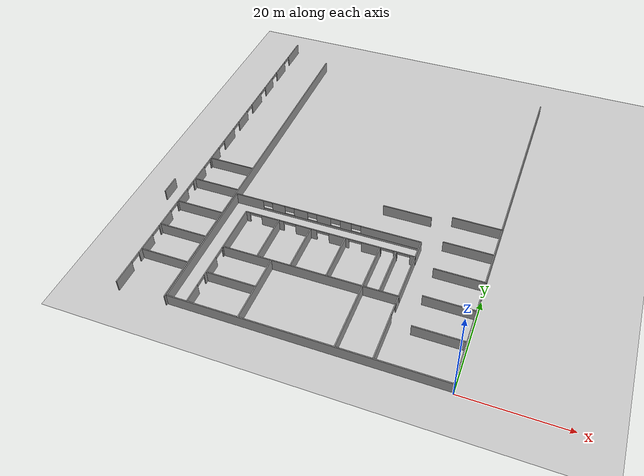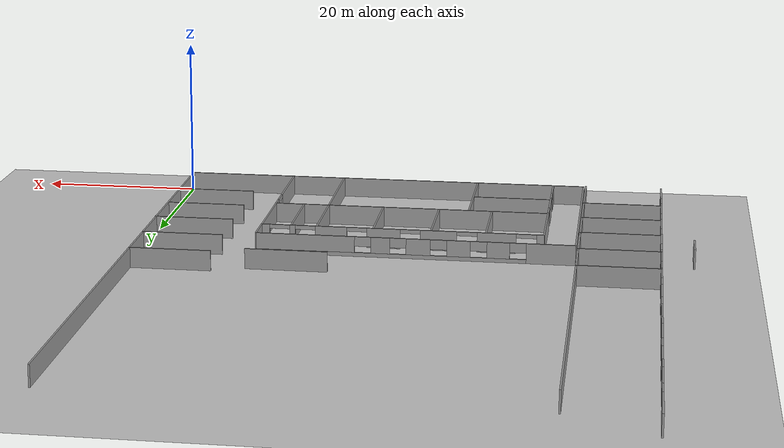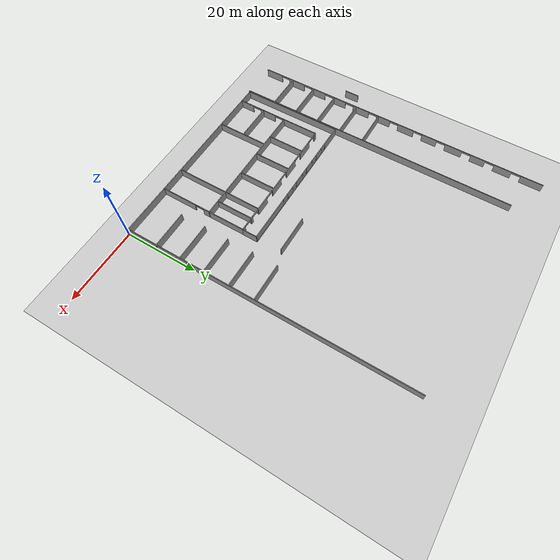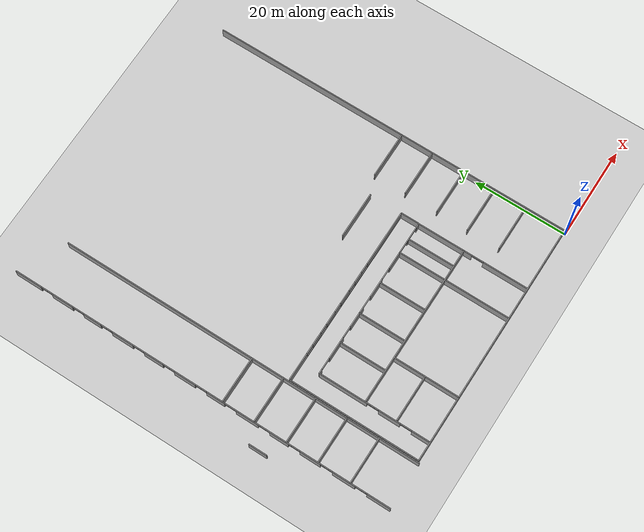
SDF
<sdf version="1.6">
 <world name="default">
  <model name="ground_plane">
   <static>1</static>
   <link name="link">
    <collision name="collision">
     <geometry><plane><normal>0 0 1</normal><size>100 100</size></plane></geometry>
     <surface><friction><ode><mu>100</mu><mu2>50</mu2></ode></friction></surface>
    </collision>
    <visual name="visual">
     <cast_shadows>0</cast_shadows>
     <geometry><plane><normal>0 0 1</normal><size>100 100</size></plane></geometry>
     <material>
      <script><uri>file://media/materials/scripts/gazebo.material</uri><name>Gazebo/Grey</name></script>
     </material>
    </visual>
   </link>
  </model>
  <model name="Jacaranda_v4">
   <link name="Wall_100">
    <collision name="Wall_100_Collision">
     <geometry><box><size>10 0.2 2.5</size></box></geometry>
     <pose>0 0 1.25 0 -0 0</pose>
    </collision>
    <visual name="Wall_100_Visual">
     <pose>0 0 1.25 0 -0 0</pose>
     <geometry><box><size>10 0.2 2.5</size></box></geometry>
     <material>
      <script><uri>file://media/materials/scripts/gazebo.material</uri><name>Gazebo/Grey</name></script>
     </material>
    </visual>
    <velocity_decay><linear>0</linear><angular>0</angular></velocity_decay>
    <pose>-6.16092 -32.9106 0 0 0 -1.5708</pose>
   </link>
   <link name="Wall_102">
    <collision name="Wall_102_Collision">
     <geometry><box><size>10 0.2 2.5</size></box></geometry>
     <pose>0 0 1.25 0 -0 0</pose>
    </collision>
    <visual name="Wall_102_Visual">
     <pose>0 0 1.25 0 -0 0</pose>
     <geometry><box><size>10 0.2 2.5</size></box></geometry>
     <material>
      <script><uri>file://media/materials/scripts/gazebo.material</uri><name>Gazebo/Grey</name></script>
     </material>
    </visual>
    <velocity_decay><linear>0</linear><angular>0</angular></velocity_decay>
    <pose>-16.4411 -32.898 0 0 0 -1.5708</pose>
   </link>
   <link name="Wall_104">
    <collision name="Wall_104_Collision">
     <geometry><box><size>10 0.2 2.5</size></box></geometry>
     <pose>0 0 1.25 0 -0 0</pose>
    </collision>
    <visual name="Wall_104_Visual">
     <pose>0 0 1.25 0 -0 0</pose>
     <geometry><box><size>10 0.2 2.5</size></box></geometry>
     <material>
      <script><uri>file://media/materials/scripts/gazebo.material</uri><name>Gazebo/Grey</name></script>
     </material>
    </visual>
    <velocity_decay><linear>0</linear><angular>0</angular></velocity_decay>
    <pose>-23.6073 -32.9162 0 0 0 -1.5708</pose>
   </link>
   <link name="Wall_106">
    <collision name="Wall_106_Collision">
     <geometry><box><size>10 0.2 2.5</size></box></geometry>
     <pose>0 0 1.25 0 -0 0</pose>
    </collision>
    <visual name="Wall_106_Visual">
     <pose>0 0 1.25 0 -0 0</pose>
     <geometry><box><size>10 0.2 2.5</size></box></geometry>
     <material>
      <script><uri>file://media/materials/scripts/gazebo.material</uri><name>Gazebo/Grey</name></script>
     </material>
    </visual>
    <velocity_decay><linear>0</linear><angular>0</angular></velocity_decay>
    <pose>-30.3649 -32.9482 0 0 0 -1.5708</pose>
   </link>
   <link name="Wall_108">
    <pose>-37.4695 -39.9617 0 0 0 -1.5708</pose>
    <visual name="Wall_108_Visual_0">
     <pose>-6.76156 0 1.25 0 -0 0</pose>
     <geometry><box><size>10.4769 0.2 2.5</size></box></geometry>
     <material>
      <script><uri>file://media/materials/scripts/gazebo.material</uri><name>Gazebo/Grey</name></script>
     </material>
    </visual>
    <collision name="Wall_108_Collision_0">
     <geometry><box><size>10.4769 0.2 2.5</size></box></geometry>
     <pose>-6.76156 0 1.25 0 -0 0</pose>
    </collision>
    <visual name="Wall_108_Visual_1">
     <pose>3.29825 0 1.25 0 -0 0</pose>
     <geometry><box><size>4.64276 0.2 2.5</size></box></geometry>
     <material>
      <script><uri>file://media/materials/scripts/gazebo.material</uri><name>Gazebo/Grey</name></script>
     </material>
    </visual>
    <collision name="Wall_108_Collision_1">
     <geometry><box><size>4.64276 0.2 2.5</size></box></geometry>
     <pose>3.29825 0 1.25 0 -0 0</pose>
    </collision>
    <visual name="Wall_108_Visual_2">
     <pose>10.0598 0 1.25 0 -0 0</pose>
     <geometry><box><size>3.88036 0.2 2.5</size></box></geometry>
     <material>
      <script><uri>file://media/materials/scripts/gazebo.material</uri><name>Gazebo/Grey</name></script>
     </material>
    </visual>
    <collision name="Wall_108_Collision_2">
     <geometry><box><size>3.88036 0.2 2.5</size></box></geometry>
     <pose>10.0598 0 1.25 0 -0 0</pose>
    </collision>
    <visual name="Wall_108_Visual_3">
     <pose>-0.273129 0 2.25 0 -0 0</pose>
     <geometry><box><size>2.5 0.2 0.5</size></box></geometry>
     <material>
      <script><uri>file://media/materials/scripts/gazebo.material</uri><name>Gazebo/Grey</name></script>
     </material>
    </visual>
    <collision name="Wall_108_Collision_3">
     <geometry><box><size>2.5 0.2 0.5</size></box></geometry>
     <pose>-0.273129 0 2.25 0 -0 0</pose>
    </collision>
    <visual name="Wall_108_Visual_4">
     <pose>6.86964 0 2.25 0 -0 0</pose>
     <geometry><box><size>2.5 0.2 0.5</size></box></geometry>
     <material>
      <script><uri>file://media/materials/scripts/gazebo.material</uri><name>Gazebo/Grey</name></script>
     </material>
    </visual>
    <collision name="Wall_108_Collision_4">
     <geometry><box><size>2.5 0.2 0.5</size></box></geometry>
     <pose>6.86964 0 2.25 0 -0 0</pose>
    </collision>
   </link>
   <link name="Wall_110">
    <collision name="Wall_110_Collision">
     <geometry><box><size>53 0.2 2.5</size></box></geometry>
     <pose>0 0 1.25 0 -0 0</pose>
    </collision>
    <visual name="Wall_110_Visual">
     <pose>0 0 1.25 0 -0 0</pose>
     <geometry><box><size>53 0.2 2.5</size></box></geometry>
     <material>
      <script><uri>file://media/materials/scripts/gazebo.material</uri><name>Gazebo/Grey</name></script>
     </material>
    </visual>
    <velocity_decay><linear>0</linear><angular>0</angular></velocity_decay>
    <pose>-15.0842 -52.0158 0 0 -0 0</pose>
   </link>
   <link name="Wall_112">
    <collision name="Wall_112_Collision">
     <geometry><box><size>14 0.2 2.5</size></box></geometry>
     <pose>0 0 1.25 0 -0 0</pose>
    </collision>
    <visual name="Wall_112_Visual">
     <pose>0 0 1.25 0 -0 0</pose>
     <geometry><box><size>14 0.2 2.5</size></box></geometry>
     <material>
      <script><uri>file://media/materials/scripts/gazebo.material</uri><name>Gazebo/Grey</name></script>
     </material>
    </visual>
    <velocity_decay><linear>0</linear><angular>0</angular></velocity_decay>
    <pose>-27.4151 -45.0631 0 0 0 -1.5708</pose>
   </link>
   <link name="Wall_114">
    <collision name="Wall_114_Collision">
     <geometry><box><size>28 0.2 2.5</size></box></geometry>
     <pose>0 0 1.25 0 -0 0</pose>
    </collision>
    <visual name="Wall_114_Visual">
     <pose>0 0 1.25 0 -0 0</pose>
     <geometry><box><size>28 0.2 2.5</size></box></geometry>
     <material>
      <script><uri>file://media/materials/scripts/gazebo.material</uri><name>Gazebo/Grey</name></script>
     </material>
    </visual>
    <velocity_decay><linear>0</linear><angular>0</angular></velocity_decay>
    <pose>-41.4842 -37.994 0 0 0 -1.5708</pose>
   </link>
   <link name="Wall_116">
    <collision name="Wall_116_Collision">
     <geometry><box><size>10 0.2 2.5</size></box></geometry>
     <pose>0 0 1.25 0 -0 0</pose>
    </collision>
    <visual name="Wall_116_Visual">
     <pose>0 0 1.25 0 -0 0</pose>
     <geometry><box><size>10 0.2 2.5</size></box></geometry>
     <material>
      <script><uri>file://media/materials/scripts/gazebo.material</uri><name>Gazebo/Grey</name></script>
     </material>
    </visual>
    <velocity_decay><linear>0</linear><angular>0</angular></velocity_decay>
    <pose>6.51408 -43.3984 0 0 -0 0</pose>
   </link>
   <link name="Wall_37">
    <pose>-2.48729 -39.9261 0 0 0 -1.5708</pose>
    <visual name="Wall_37_Visual_0">
     <pose>-6.07032 0 1.25 0 -0 0</pose>
     <geometry><box><size>11.8594 0.2 2.5</size></box></geometry>
     <material>
      <script><uri>file://media/materials/scripts/gazebo.material</uri><name>Gazebo/Grey</name></script>
     </material>
    </visual>
    <collision name="Wall_37_Collision_0">
     <geometry><box><size>11.8594 0.2 2.5</size></box></geometry>
     <pose>-6.07032 0 1.25 0 -0 0</pose>
    </collision>
    <visual name="Wall_37_Visual_1">
     <pose>7.17968 0 1.25 0 -0 0</pose>
     <geometry><box><size>9.64064 0.2 2.5</size></box></geometry>
     <material>
      <script><uri>file://media/materials/scripts/gazebo.material</uri><name>Gazebo/Grey</name></script>
     </material>
    </visual>
    <collision name="Wall_37_Collision_1">
     <geometry><box><size>9.64064 0.2 2.5</size></box></geometry>
     <pose>7.17968 0 1.25 0 -0 0</pose>
    </collision>
    <visual name="Wall_37_Visual_2">
     <pose>1.10936 0 2.25 0 -0 0</pose>
     <geometry><box><size>2.5 0.2 0.5</size></box></geometry>
     <material>
      <script><uri>file://media/materials/scripts/gazebo.material</uri><name>Gazebo/Grey</name></script>
     </material>
    </visual>
    <collision name="Wall_37_Collision_2">
     <geometry><box><size>2.5 0.2 0.5</size></box></geometry>
     <pose>1.10936 0 2.25 0 -0 0</pose>
    </collision>
   </link>
   <link name="Wall_52">
    <collision name="Wall_52_Collision">
     <geometry><box><size>24.1932 0.2 2.5</size></box></geometry>
     <pose>0 0 1.25 0 -0 0</pose>
    </collision>
    <visual name="Wall_52_Visual">
     <pose>0 0 1.25 0 -0 0</pose>
     <geometry><box><size>24.1932 0.2 2.5</size></box></geometry>
     <material>
      <script><uri>file://media/materials/scripts/gazebo.material</uri><name>Gazebo/Grey</name></script>
     </material>
    </visual>
    <velocity_decay><linear>0</linear><angular>0</angular></velocity_decay>
    <pose>-9.37734 -40.0171 0 0 0 -1.5708</pose>
   </link>
   <link name="Wall_63">
    <collision name="Wall_63_Collision">
     <geometry><box><size>10 0.2 2.5</size></box></geometry>
     <pose>0 0 1.25 0 -0 0</pose>
    </collision>
    <visual name="Wall_63_Visual">
     <pose>0 0 1.25 0 -0 0</pose>
     <geometry><box><size>10 0.2 2.5</size></box></geometry>
     <material>
      <script><uri>file://media/materials/scripts/gazebo.material</uri><name>Gazebo/Grey</name></script>
     </material>
    </visual>
    <velocity_decay><linear>0</linear><angular>0</angular></velocity_decay>
    <pose>-7.36232 -17.0326 0 0 -0 0</pose>
   </link>
   <link name="Wall_65">
    <pose>-21.9808 -24.0075 0 0 -0 0</pose>
    <visual name="Wall_65_Visual_0">
     <pose>-16.5353 0 1.25 0 -0 0</pose>
     <geometry><box><size>5.92942 0.2 2.5</size></box></geometry>
     <material>
      <script><uri>file://media/materials/scripts/gazebo.material</uri><name>Gazebo/Grey</name></script>
     </material>
    </visual>
    <collision name="Wall_65_Collision_0">
     <geometry><box><size>5.92942 0.2 2.5</size></box></geometry>
     <pose>-16.5353 0 1.25 0 -0 0</pose>
    </collision>
    <visual name="Wall_65_Visual_1">
     <pose>2.96471 0 0.25 0 -0 0</pose>
     <geometry><box><size>33.0706 0.2 0.5</size></box></geometry>
     <material>
      <script><uri>file://media/materials/scripts/gazebo.material</uri><name>Gazebo/Grey</name></script>
     </material>
    </visual>
    <collision name="Wall_65_Collision_1">
     <geometry><box><size>33.0706 0.2 0.5</size></box></geometry>
     <pose>2.96471 0 0.25 0 -0 0</pose>
    </collision>
    <visual name="Wall_65_Visual_2">
     <pose>-10.2002 0 1.5 0 -0 0</pose>
     <geometry><box><size>2.74072 0.2 2</size></box></geometry>
     <material>
      <script><uri>file://media/materials/scripts/gazebo.material</uri><name>Gazebo/Grey</name></script>
     </material>
    </visual>
    <collision name="Wall_65_Collision_2">
     <geometry><box><size>2.74072 0.2 2</size></box></geometry>
     <pose>-10.2002 0 1.5 0 -0 0</pose>
    </collision>
    <visual name="Wall_65_Visual_3">
     <pose>-5.38873 0 1.5 0 -0 0</pose>
     <geometry><box><size>2.88224 0.2 2</size></box></geometry>
     <material>
      <script><uri>file://media/materials/scripts/gazebo.material</uri><name>Gazebo/Grey</name></script>
     </material>
    </visual>
    <collision name="Wall_65_Collision_3">
     <geometry><box><size>2.88224 0.2 2</size></box></geometry>
     <pose>-5.38873 0 1.5 0 -0 0</pose>
    </collision>
    <visual name="Wall_65_Visual_4">
     <pose>-0.471118 0 1.5 0 -0 0</pose>
     <geometry><box><size>2.95299 0.2 2</size></box></geometry>
     <material>
      <script><uri>file://media/materials/scripts/gazebo.material</uri><name>Gazebo/Grey</name></script>
     </material>
    </visual>
    <collision name="Wall_65_Collision_4">
     <geometry><box><size>2.95299 0.2 2</size></box></geometry>
     <pose>-0.471118 0 1.5 0 -0 0</pose>
    </collision>
    <visual name="Wall_65_Visual_5">
     <pose>4.16347 0 1.5 0 -0 0</pose>
     <geometry><box><size>2.31618 0.2 2</size></box></geometry>
     <material>
      <script><uri>file://media/materials/scripts/gazebo.material</uri><name>Gazebo/Grey</name></script>
     </material>
    </visual>
    <collision name="Wall_65_Collision_5">
     <geometry><box><size>2.31618 0.2 2</size></box></geometry>
     <pose>4.16347 0 1.5 0 -0 0</pose>
    </collision>
    <visual name="Wall_65_Visual_6">
     <pose>13.4108 0 1.5 0 -0 0</pose>
     <geometry><box><size>12.1784 0.2 2</size></box></geometry>
     <material>
      <script><uri>file://media/materials/scripts/gazebo.material</uri><name>Gazebo/Grey</name></script>
     </material>
    </visual>
    <collision name="Wall_65_Collision_6">
     <geometry><box><size>12.1784 0.2 2</size></box></geometry>
     <pose>13.4108 0 1.5 0 -0 0</pose>
    </collision>
    <visual name="Wall_65_Visual_7">
     <pose>-12.5706 0 1.9 0 -0 0</pose>
     <geometry><box><size>2 0.2 1.2</size></box></geometry>
     <material>
      <script><uri>file://media/materials/scripts/gazebo.material</uri><name>Gazebo/Grey</name></script>
     </material>
    </visual>
    <collision name="Wall_65_Collision_7">
     <geometry><box><size>2 0.2 1.2</size></box></geometry>
     <pose>-12.5706 0 1.9 0 -0 0</pose>
    </collision>
    <visual name="Wall_65_Visual_8">
     <pose>-7.82985 0 1.9 0 -0 0</pose>
     <geometry><box><size>2 0.2 1.2</size></box></geometry>
     <material>
      <script><uri>file://media/materials/scripts/gazebo.material</uri><name>Gazebo/Grey</name></script>
     </material>
    </visual>
    <collision name="Wall_65_Collision_8">
     <geometry><box><size>2 0.2 1.2</size></box></geometry>
     <pose>-7.82985 0 1.9 0 -0 0</pose>
    </collision>
    <visual name="Wall_65_Visual_9">
     <pose>-2.94761 0 1.9 0 -0 0</pose>
     <geometry><box><size>2 0.2 1.2</size></box></geometry>
     <material>
      <script><uri>file://media/materials/scripts/gazebo.material</uri><name>Gazebo/Grey</name></script>
     </material>
    </visual>
    <collision name="Wall_65_Collision_9">
     <geometry><box><size>2 0.2 1.2</size></box></geometry>
     <pose>-2.94761 0 1.9 0 -0 0</pose>
    </collision>
    <visual name="Wall_65_Visual_10">
     <pose>2.00538 0 1.9 0 -0 0</pose>
     <geometry><box><size>2 0.2 1.2</size></box></geometry>
     <material>
      <script><uri>file://media/materials/scripts/gazebo.material</uri><name>Gazebo/Grey</name></script>
     </material>
    </visual>
    <collision name="Wall_65_Collision_10">
     <geometry><box><size>2 0.2 1.2</size></box></geometry>
     <pose>2.00538 0 1.9 0 -0 0</pose>
    </collision>
    <visual name="Wall_65_Visual_11">
     <pose>6.32156 0 1.9 0 -0 0</pose>
     <geometry><box><size>2 0.2 1.2</size></box></geometry>
     <material>
      <script><uri>file://media/materials/scripts/gazebo.material</uri><name>Gazebo/Grey</name></script>
     </material>
    </visual>
    <collision name="Wall_65_Collision_11">
     <geometry><box><size>2 0.2 1.2</size></box></geometry>
     <pose>6.32156 0 1.9 0 -0 0</pose>
    </collision>
   </link>
   <link name="Wall_69">
    <collision name="Wall_69_Collision">
     <geometry><box><size>78.4462 0.2 2.5</size></box></geometry>
     <pose>0 0 1.25 0 -0 0</pose>
    </collision>
    <visual name="Wall_69_Visual">
     <pose>0 0 1.25 0 -0 0</pose>
     <geometry><box><size>78.4462 0.2 2.5</size></box></geometry>
     <material>
      <script><uri>file://media/materials/scripts/gazebo.material</uri><name>Gazebo/Grey</name></script>
     </material>
    </visual>
    <velocity_decay><linear>0</linear><angular>0</angular></velocity_decay>
    <pose>11.3874 -12.8156 0 0 0 -1.5708</pose>
   </link>
   <link name="Wall_81">
    <collision name="Wall_81_Collision">
     <geometry><box><size>10 0.2 2.5</size></box></geometry>
     <pose>0 0 1.25 0 -0 0</pose>
    </collision>
    <visual name="Wall_81_Visual">
     <pose>0 0 1.25 0 -0 0</pose>
     <geometry><box><size>10 0.2 2.5</size></box></geometry>
     <material>
      <script><uri>file://media/materials/scripts/gazebo.material</uri><name>Gazebo/Grey</name></script>
     </material>
    </visual>
    <velocity_decay><linear>0</linear><angular>0</angular></velocity_decay>
    <pose>6.4754 -15.532 0 0 -0 0</pose>
   </link>
   <link name="Wall_83">
    <collision name="Wall_83_Collision">
     <geometry><box><size>10 0.2 2.5</size></box></geometry>
     <pose>0 0 1.25 0 -0 0</pose>
    </collision>
    <visual name="Wall_83_Visual">
     <pose>0 0 1.25 0 -0 0</pose>
     <geometry><box><size>10 0.2 2.5</size></box></geometry>
     <material>
      <script><uri>file://media/materials/scripts/gazebo.material</uri><name>Gazebo/Grey</name></script>
     </material>
    </visual>
    <velocity_decay><linear>0</linear><angular>0</angular></velocity_decay>
    <pose>6.44384 -22.4952 0 0 -0 0</pose>
   </link>
   <link name="Wall_85">
    <collision name="Wall_85_Collision">
     <geometry><box><size>10 0.2 2.5</size></box></geometry>
     <pose>0 0 1.25 0 -0 0</pose>
    </collision>
    <visual name="Wall_85_Visual">
     <pose>0 0 1.25 0 -0 0</pose>
     <geometry><box><size>10 0.2 2.5</size></box></geometry>
     <material>
      <script><uri>file://media/materials/scripts/gazebo.material</uri><name>Gazebo/Grey</name></script>
     </material>
    </visual>
    <velocity_decay><linear>0</linear><angular>0</angular></velocity_decay>
    <pose>6.53559 -29.5696 0 0 -0 0</pose>
   </link>
   <link name="Wall_89">
    <pose>-20.0123 -27.9879 0 0 -0 3.14159</pose>
    <visual name="Wall_89_Visual_0">
     <pose>-17.0213 0 1.25 0 -0 0</pose>
     <geometry><box><size>0.957415 0.2 2.5</size></box></geometry>
     <material>
      <script><uri>file://media/materials/scripts/gazebo.material</uri><name>Gazebo/Grey</name></script>
     </material>
    </visual>
    <collision name="Wall_89_Collision_0">
     <geometry><box><size>0.957415 0.2 2.5</size></box></geometry>
     <pose>-17.0213 0 1.25 0 -0 0</pose>
    </collision>
    <visual name="Wall_89_Visual_1">
     <pose>-13.6838 0 1.25 0 -0 0</pose>
     <geometry><box><size>0.717618 0.2 2.5</size></box></geometry>
     <material>
      <script><uri>file://media/materials/scripts/gazebo.material</uri><name>Gazebo/Grey</name></script>
     </material>
    </visual>
    <collision name="Wall_89_Collision_1">
     <geometry><box><size>0.717618 0.2 2.5</size></box></geometry>
     <pose>-13.6838 0 1.25 0 -0 0</pose>
    </collision>
    <visual name="Wall_89_Visual_2">
     <pose>-8.84673 0 1.25 0 -0 0</pose>
     <geometry><box><size>3.95648 0.2 2.5</size></box></geometry>
     <material>
      <script><uri>file://media/materials/scripts/gazebo.material</uri><name>Gazebo/Grey</name></script>
     </material>
    </visual>
    <collision name="Wall_89_Collision_2">
     <geometry><box><size>3.95648 0.2 2.5</size></box></geometry>
     <pose>-8.84673 0 1.25 0 -0 0</pose>
    </collision>
    <visual name="Wall_89_Visual_3">
     <pose>-2.29074 0 1.25 0 -0 0</pose>
     <geometry><box><size>4.15549 0.2 2.5</size></box></geometry>
     <material>
      <script><uri>file://media/materials/scripts/gazebo.material</uri><name>Gazebo/Grey</name></script>
     </material>
    </visual>
    <collision name="Wall_89_Collision_3">
     <geometry><box><size>4.15549 0.2 2.5</size></box></geometry>
     <pose>-2.29074 0 1.25 0 -0 0</pose>
    </collision>
    <visual name="Wall_89_Visual_4">
     <pose>4.53043 0 1.25 0 -0 0</pose>
     <geometry><box><size>4.48686 0.2 2.5</size></box></geometry>
     <material>
      <script><uri>file://media/materials/scripts/gazebo.material</uri><name>Gazebo/Grey</name></script>
     </material>
    </visual>
    <collision name="Wall_89_Collision_4">
     <geometry><box><size>4.48686 0.2 2.5</size></box></geometry>
     <pose>4.53043 0 1.25 0 -0 0</pose>
    </collision>
    <visual name="Wall_89_Visual_5">
     <pose>11.6732 0 1.25 0 -0 0</pose>
     <geometry><box><size>4.79864 0.2 2.5</size></box></geometry>
     <material>
      <script><uri>file://media/materials/scripts/gazebo.material</uri><name>Gazebo/Grey</name></script>
     </material>
    </visual>
    <collision name="Wall_89_Collision_5">
     <geometry><box><size>4.79864 0.2 2.5</size></box></geometry>
     <pose>11.6732 0 1.25 0 -0 0</pose>
    </collision>
    <visual name="Wall_89_Visual_6">
     <pose>17.0363 0 1.25 0 -0 0</pose>
     <geometry><box><size>0.927498 0.2 2.5</size></box></geometry>
     <material>
      <script><uri>file://media/materials/scripts/gazebo.material</uri><name>Gazebo/Grey</name></script>
     </material>
    </visual>
    <collision name="Wall_89_Collision_6">
     <geometry><box><size>0.927498 0.2 2.5</size></box></geometry>
     <pose>17.0363 0 1.25 0 -0 0</pose>
    </collision>
    <visual name="Wall_89_Visual_7">
     <pose>-15.2926 0 2.25 0 -0 0</pose>
     <geometry><box><size>2.5 0.2 0.5</size></box></geometry>
     <material>
      <script><uri>file://media/materials/scripts/gazebo.material</uri><name>Gazebo/Grey</name></script>
     </material>
    </visual>
    <collision name="Wall_89_Collision_7">
     <geometry><box><size>2.5 0.2 0.5</size></box></geometry>
     <pose>-15.2926 0 2.25 0 -0 0</pose>
    </collision>
    <visual name="Wall_89_Visual_8">
     <pose>-12.075 0 2.25 0 -0 0</pose>
     <geometry><box><size>2.5 0.2 0.5</size></box></geometry>
     <material>
      <script><uri>file://media/materials/scripts/gazebo.material</uri><name>Gazebo/Grey</name></script>
     </material>
    </visual>
    <collision name="Wall_89_Collision_8">
     <geometry><box><size>2.5 0.2 0.5</size></box></geometry>
     <pose>-12.075 0 2.25 0 -0 0</pose>
    </collision>
    <visual name="Wall_89_Visual_9">
     <pose>-5.61848 0 2.25 0 -0 0</pose>
     <geometry><box><size>2.5 0.2 0.5</size></box></geometry>
     <material>
      <script><uri>file://media/materials/scripts/gazebo.material</uri><name>Gazebo/Grey</name></script>
     </material>
    </visual>
    <collision name="Wall_89_Collision_9">
     <geometry><box><size>2.5 0.2 0.5</size></box></geometry>
     <pose>-5.61848 0 2.25 0 -0 0</pose>
    </collision>
    <visual name="Wall_89_Visual_10">
     <pose>1.037 0 2.25 0 -0 0</pose>
     <geometry><box><size>2.5 0.2 0.5</size></box></geometry>
     <material>
      <script><uri>file://media/materials/scripts/gazebo.material</uri><name>Gazebo/Grey</name></script>
     </material>
    </visual>
    <collision name="Wall_89_Collision_10">
     <geometry><box><size>2.5 0.2 0.5</size></box></geometry>
     <pose>1.037 0 2.25 0 -0 0</pose>
    </collision>
    <visual name="Wall_89_Visual_11">
     <pose>8.02387 0 2.25 0 -0 0</pose>
     <geometry><box><size>2.5 0.2 0.5</size></box></geometry>
     <material>
      <script><uri>file://media/materials/scripts/gazebo.material</uri><name>Gazebo/Grey</name></script>
     </material>
    </visual>
    <collision name="Wall_89_Collision_11">
     <geometry><box><size>2.5 0.2 0.5</size></box></geometry>
     <pose>8.02387 0 2.25 0 -0 0</pose>
    </collision>
    <visual name="Wall_89_Visual_12">
     <pose>15.3225 0 2.25 0 -0 0</pose>
     <geometry><box><size>2.5 0.2 0.5</size></box></geometry>
     <material>
      <script><uri>file://media/materials/scripts/gazebo.material</uri><name>Gazebo/Grey</name></script>
     </material>
    </visual>
    <collision name="Wall_89_Collision_12">
     <geometry><box><size>2.5 0.2 0.5</size></box></geometry>
     <pose>15.3225 0 2.25 0 -0 0</pose>
    </collision>
   </link>
   <link name="Wall_91">
    <collision name="Wall_91_Collision">
     <geometry><box><size>4 0.2 2.5</size></box></geometry>
     <pose>0 0 1.25 0 -0 0</pose>
    </collision>
    <visual name="Wall_91_Visual">
     <pose>0 0 1.25 0 -0 0</pose>
     <geometry><box><size>4 0.2 2.5</size></box></geometry>
     <material>
      <script><uri>file://media/materials/scripts/gazebo.material</uri><name>Gazebo/Grey</name></script>
     </material>
    </visual>
    <velocity_decay><linear>0</linear><angular>0</angular></velocity_decay>
    <pose>-2.43322 -26.0003 0 0 0 -1.5708</pose>
   </link>
   <link name="Wall_93">
    <collision name="Wall_93_Collision">
     <geometry><box><size>10 0.2 2.5</size></box></geometry>
     <pose>0 0 1.25 0 -0 0</pose>
    </collision>
    <visual name="Wall_93_Visual">
     <pose>0 0 1.25 0 -0 0</pose>
     <geometry><box><size>10 0.2 2.5</size></box></geometry>
     <material>
      <script><uri>file://media/materials/scripts/gazebo.material</uri><name>Gazebo/Grey</name></script>
     </material>
    </visual>
    <velocity_decay><linear>0</linear><angular>0</angular></velocity_decay>
    <pose>6.44165 -36.4149 0 0 -0 0</pose>
   </link>
   <link name="Wall_96">
    <collision name="Wall_96_Collision">
     <geometry><box><size>35 0.2 2.5</size></box></geometry>
     <pose>0 0 1.25 0 -0 0</pose>
    </collision>
    <visual name="Wall_96_Visual">
     <pose>0 0 1.25 0 -0 0</pose>
     <geometry><box><size>35 0.2 2.5</size></box></geometry>
     <material>
      <script><uri>file://media/materials/scripts/gazebo.material</uri><name>Gazebo/Grey</name></script>
     </material>
    </visual>
    <velocity_decay><linear>0</linear><angular>0</angular></velocity_decay>
    <pose>-19.8824 -37.9939 0 0 -0 3.14159</pose>
   </link>
   <link name="Wall_98">
    <collision name="Wall_98_Collision">
     <geometry><box><size>10 0.2 2.5</size></box></geometry>
     <pose>0 0 1.25 0 -0 0</pose>
    </collision>
    <visual name="Wall_98_Visual">
     <pose>0 0 1.25 0 -0 0</pose>
     <geometry><box><size>10 0.2 2.5</size></box></geometry>
     <material>
      <script><uri>file://media/materials/scripts/gazebo.material</uri><name>Gazebo/Grey</name></script>
     </material>
    </visual>
    <velocity_decay><linear>0</linear><angular>0</angular></velocity_decay>
    <pose>-32.3697 -44.7336 0 0 -0 0</pose>
   </link>
   <static>1</static>
   <pose>-11.5705 52.3804 0 0 -0 0</pose>
  </model>
  <model name="Jacaranda_v4_clone">
   <link name="Wall_116">
    <collision name="Wall_116_Collision">
     <geometry><box><size>10 0.2 2.5</size></box></geometry>
     <pose>0 0 1.25 0 -0 0</pose>
    </collision>
    <visual name="Wall_116_Visual">
     <pose>0 0 1.25 0 -0 0</pose>
     <geometry><box><size>10 0.2 2.5</size></box></geometry>
     <material>
      <script><uri>file://media/materials/scripts/gazebo.material</uri><name>Gazebo/Grey</name></script>
     </material>
    </visual>
    <velocity_decay><linear>0</linear><angular>0</angular></velocity_decay>
    <pose>6.51408 -43.3984 0 0 -0 0</pose>
   </link>
   <link name="Wall_35">
    <pose>1.50679 -10.3195 0 0 0 -1.5708</pose>
    <visual name="Wall_35_Visual_0">
     <pose>-38.7718 0 1.25 0 -0 0</pose>
     <geometry><box><size>5.89333 0.2 2.5</size></box></geometry>
     <material>
      <script><uri>file://media/materials/scripts/gazebo.material</uri><name>Gazebo/Grey</name></script>
     </material>
    </visual>
    <collision name="Wall_35_Collision_0">
     <geometry><box><size>5.89333 0.2 2.5</size></box></geometry>
     <pose>-38.7718 0 1.25 0 -0 0</pose>
    </collision>
    <visual name="Wall_35_Visual_1">
     <pose>-30.9611 0 1.25 0 -0 0</pose>
     <geometry><box><size>4.72808 0.2 2.5</size></box></geometry>
     <material>
      <script><uri>file://media/materials/scripts/gazebo.material</uri><name>Gazebo/Grey</name></script>
     </material>
    </visual>
    <collision name="Wall_35_Collision_1">
     <geometry><box><size>4.72808 0.2 2.5</size></box></geometry>
     <pose>-30.9611 0 1.25 0 -0 0</pose>
    </collision>
    <visual name="Wall_35_Visual_2">
     <pose>-24.0927 0 1.25 0 -0 0</pose>
     <geometry><box><size>4.00867 0.2 2.5</size></box></geometry>
     <material>
      <script><uri>file://media/materials/scripts/gazebo.material</uri><name>Gazebo/Grey</name></script>
     </material>
    </visual>
    <collision name="Wall_35_Collision_2">
     <geometry><box><size>4.00867 0.2 2.5</size></box></geometry>
     <pose>-24.0927 0 1.25 0 -0 0</pose>
    </collision>
    <visual name="Wall_35_Visual_3">
     <pose>-17.1876 0 1.25 0 -0 0</pose>
     <geometry><box><size>4.80162 0.2 2.5</size></box></geometry>
     <material>
      <script><uri>file://media/materials/scripts/gazebo.material</uri><name>Gazebo/Grey</name></script>
     </material>
    </visual>
    <collision name="Wall_35_Collision_3">
     <geometry><box><size>4.80162 0.2 2.5</size></box></geometry>
     <pose>-17.1876 0 1.25 0 -0 0</pose>
    </collision>
    <visual name="Wall_35_Visual_4">
     <pose>-10.1336 0 1.25 0 -0 0</pose>
     <geometry><box><size>4.3064 0.2 2.5</size></box></geometry>
     <material>
      <script><uri>file://media/materials/scripts/gazebo.material</uri><name>Gazebo/Grey</name></script>
     </material>
    </visual>
    <collision name="Wall_35_Collision_4">
     <geometry><box><size>4.3064 0.2 2.5</size></box></geometry>
     <pose>-10.1336 0 1.25 0 -0 0</pose>
    </collision>
    <visual name="Wall_35_Visual_5">
     <pose>-3.14147 0 1.25 0 -0 0</pose>
     <geometry><box><size>4.67776 0.2 2.5</size></box></geometry>
     <material>
      <script><uri>file://media/materials/scripts/gazebo.material</uri><name>Gazebo/Grey</name></script>
     </material>
    </visual>
    <collision name="Wall_35_Collision_5">
     <geometry><box><size>4.67776 0.2 2.5</size></box></geometry>
     <pose>-3.14147 0 1.25 0 -0 0</pose>
    </collision>
    <visual name="Wall_35_Visual_6">
     <pose>3.7295 0 1.25 0 -0 0</pose>
     <geometry><box><size>4.06418 0.2 2.5</size></box></geometry>
     <material>
      <script><uri>file://media/materials/scripts/gazebo.material</uri><name>Gazebo/Grey</name></script>
     </material>
    </visual>
    <collision name="Wall_35_Collision_6">
     <geometry><box><size>4.06418 0.2 2.5</size></box></geometry>
     <pose>3.7295 0 1.25 0 -0 0</pose>
    </collision>
    <visual name="Wall_35_Visual_7">
     <pose>10.6976 0 1.25 0 -0 0</pose>
     <geometry><box><size>4.872 0.2 2.5</size></box></geometry>
     <material>
      <script><uri>file://media/materials/scripts/gazebo.material</uri><name>Gazebo/Grey</name></script>
     </material>
    </visual>
    <collision name="Wall_35_Collision_7">
     <geometry><box><size>4.872 0.2 2.5</size></box></geometry>
     <pose>10.6976 0 1.25 0 -0 0</pose>
    </collision>
    <visual name="Wall_35_Visual_8">
     <pose>17.7003 0 1.25 0 -0 0</pose>
     <geometry><box><size>4.13333 0.2 2.5</size></box></geometry>
     <material>
      <script><uri>file://media/materials/scripts/gazebo.material</uri><name>Gazebo/Grey</name></script>
     </material>
    </visual>
    <collision name="Wall_35_Collision_8">
     <geometry><box><size>4.13333 0.2 2.5</size></box></geometry>
     <pose>17.7003 0 1.25 0 -0 0</pose>
    </collision>
    <visual name="Wall_35_Visual_9">
     <pose>24.507 0 1.25 0 -0 0</pose>
     <geometry><box><size>4.48015 0.2 2.5</size></box></geometry>
     <material>
      <script><uri>file://media/materials/scripts/gazebo.material</uri><name>Gazebo/Grey</name></script>
     </material>
    </visual>
    <collision name="Wall_35_Collision_9">
     <geometry><box><size>4.48015 0.2 2.5</size></box></geometry>
     <pose>24.507 0 1.25 0 -0 0</pose>
    </collision>
    <visual name="Wall_35_Visual_10">
     <pose>31.7056 0 1.25 0 -0 0</pose>
     <geometry><box><size>4.91715 0.2 2.5</size></box></geometry>
     <material>
      <script><uri>file://media/materials/scripts/gazebo.material</uri><name>Gazebo/Grey</name></script>
     </material>
    </visual>
    <collision name="Wall_35_Collision_10">
     <geometry><box><size>4.91715 0.2 2.5</size></box></geometry>
     <pose>31.7056 0 1.25 0 -0 0</pose>
    </collision>
    <visual name="Wall_35_Visual_11">
     <pose>39.1913 0 1.25 0 -0 0</pose>
     <geometry><box><size>5.05424 0.2 2.5</size></box></geometry>
     <material>
      <script><uri>file://media/materials/scripts/gazebo.material</uri><name>Gazebo/Grey</name></script>
     </material>
    </visual>
    <collision name="Wall_35_Collision_11">
     <geometry><box><size>5.05424 0.2 2.5</size></box></geometry>
     <pose>39.1913 0 1.25 0 -0 0</pose>
    </collision>
    <visual name="Wall_35_Visual_12">
     <pose>-34.5751 0 2.25 0 -0 0</pose>
     <geometry><box><size>2.5 0.2 0.5</size></box></geometry>
     <material>
      <script><uri>file://media/materials/scripts/gazebo.material</uri><name>Gazebo/Grey</name></script>
     </material>
    </visual>
    <collision name="Wall_35_Collision_12">
     <geometry><box><size>2.5 0.2 0.5</size></box></geometry>
     <pose>-34.5751 0 2.25 0 -0 0</pose>
    </collision>
    <visual name="Wall_35_Visual_13">
     <pose>-27.347 0 2.25 0 -0 0</pose>
     <geometry><box><size>2.5 0.2 0.5</size></box></geometry>
     <material>
      <script><uri>file://media/materials/scripts/gazebo.material</uri><name>Gazebo/Grey</name></script>
     </material>
    </visual>
    <collision name="Wall_35_Collision_13">
     <geometry><box><size>2.5 0.2 0.5</size></box></geometry>
     <pose>-27.347 0 2.25 0 -0 0</pose>
    </collision>
    <visual name="Wall_35_Visual_14">
     <pose>-20.8384 0 2.25 0 -0 0</pose>
     <geometry><box><size>2.5 0.2 0.5</size></box></geometry>
     <material>
      <script><uri>file://media/materials/scripts/gazebo.material</uri><name>Gazebo/Grey</name></script>
     </material>
    </visual>
    <collision name="Wall_35_Collision_14">
     <geometry><box><size>2.5 0.2 0.5</size></box></geometry>
     <pose>-20.8384 0 2.25 0 -0 0</pose>
    </collision>
    <visual name="Wall_35_Visual_15">
     <pose>-13.5368 0 2.25 0 -0 0</pose>
     <geometry><box><size>2.5 0.2 0.5</size></box></geometry>
     <material>
      <script><uri>file://media/materials/scripts/gazebo.material</uri><name>Gazebo/Grey</name></script>
     </material>
    </visual>
    <collision name="Wall_35_Collision_15">
     <geometry><box><size>2.5 0.2 0.5</size></box></geometry>
     <pose>-13.5368 0 2.25 0 -0 0</pose>
    </collision>
    <visual name="Wall_35_Visual_16">
     <pose>-6.73035 0 2.25 0 -0 0</pose>
     <geometry><box><size>2.5 0.2 0.5</size></box></geometry>
     <material>
      <script><uri>file://media/materials/scripts/gazebo.material</uri><name>Gazebo/Grey</name></script>
     </material>
    </visual>
    <collision name="Wall_35_Collision_16">
     <geometry><box><size>2.5 0.2 0.5</size></box></geometry>
     <pose>-6.73035 0 2.25 0 -0 0</pose>
    </collision>
    <visual name="Wall_35_Visual_17">
     <pose>0.447409 0 2.25 0 -0 0</pose>
     <geometry><box><size>2.5 0.2 0.5</size></box></geometry>
     <material>
      <script><uri>file://media/materials/scripts/gazebo.material</uri><name>Gazebo/Grey</name></script>
     </material>
    </visual>
    <collision name="Wall_35_Collision_17">
     <geometry><box><size>2.5 0.2 0.5</size></box></geometry>
     <pose>0.447409 0 2.25 0 -0 0</pose>
    </collision>
    <visual name="Wall_35_Visual_18">
     <pose>7.01159 0 2.25 0 -0 0</pose>
     <geometry><box><size>2.5 0.2 0.5</size></box></geometry>
     <material>
      <script><uri>file://media/materials/scripts/gazebo.material</uri><name>Gazebo/Grey</name></script>
     </material>
    </visual>
    <collision name="Wall_35_Collision_18">
     <geometry><box><size>2.5 0.2 0.5</size></box></geometry>
     <pose>7.01159 0 2.25 0 -0 0</pose>
    </collision>
    <visual name="Wall_35_Visual_19">
     <pose>14.3836 0 2.25 0 -0 0</pose>
     <geometry><box><size>2.5 0.2 0.5</size></box></geometry>
     <material>
      <script><uri>file://media/materials/scripts/gazebo.material</uri><name>Gazebo/Grey</name></script>
     </material>
    </visual>
    <collision name="Wall_35_Collision_19">
     <geometry><box><size>2.5 0.2 0.5</size></box></geometry>
     <pose>14.3836 0 2.25 0 -0 0</pose>
    </collision>
    <visual name="Wall_35_Visual_20">
     <pose>21.0169 0 2.25 0 -0 0</pose>
     <geometry><box><size>2.5 0.2 0.5</size></box></geometry>
     <material>
      <script><uri>file://media/materials/scripts/gazebo.material</uri><name>Gazebo/Grey</name></script>
     </material>
    </visual>
    <collision name="Wall_35_Collision_20">
     <geometry><box><size>2.5 0.2 0.5</size></box></geometry>
     <pose>21.0169 0 2.25 0 -0 0</pose>
    </collision>
    <visual name="Wall_35_Visual_21">
     <pose>27.9971 0 2.25 0 -0 0</pose>
     <geometry><box><size>2.5 0.2 0.5</size></box></geometry>
     <material>
      <script><uri>file://media/materials/scripts/gazebo.material</uri><name>Gazebo/Grey</name></script>
     </material>
    </visual>
    <collision name="Wall_35_Collision_21">
     <geometry><box><size>2.5 0.2 0.5</size></box></geometry>
     <pose>27.9971 0 2.25 0 -0 0</pose>
    </collision>
    <visual name="Wall_35_Visual_22">
     <pose>35.4142 0 2.25 0 -0 0</pose>
     <geometry><box><size>2.5 0.2 0.5</size></box></geometry>
     <material>
      <script><uri>file://media/materials/scripts/gazebo.material</uri><name>Gazebo/Grey</name></script>
     </material>
    </visual>
    <collision name="Wall_35_Collision_22">
     <geometry><box><size>2.5 0.2 0.5</size></box></geometry>
     <pose>35.4142 0 2.25 0 -0 0</pose>
    </collision>
   </link>
   <link name="Wall_69">
    <collision name="Wall_69_Collision">
     <geometry><box><size>78.4462 0.2 2.5</size></box></geometry>
     <pose>0 0 1.25 0 -0 0</pose>
    </collision>
    <visual name="Wall_69_Visual">
     <pose>0 0 1.25 0 -0 0</pose>
     <geometry><box><size>78.4462 0.2 2.5</size></box></geometry>
     <material>
      <script><uri>file://media/materials/scripts/gazebo.material</uri><name>Gazebo/Grey</name></script>
     </material>
    </visual>
    <velocity_decay><linear>0</linear><angular>0</angular></velocity_decay>
    <pose>11.3874 -12.8156 0 0 0 -1.5708</pose>
   </link>
   <link name="Wall_81">
    <collision name="Wall_81_Collision">
     <geometry><box><size>10 0.2 2.5</size></box></geometry>
     <pose>0 0 1.25 0 -0 0</pose>
    </collision>
    <visual name="Wall_81_Visual">
     <pose>0 0 1.25 0 -0 0</pose>
     <geometry><box><size>10 0.2 2.5</size></box></geometry>
     <material>
      <script><uri>file://media/materials/scripts/gazebo.material</uri><name>Gazebo/Grey</name></script>
     </material>
    </visual>
    <velocity_decay><linear>0</linear><angular>0</angular></velocity_decay>
    <pose>6.4754 -15.532 0 0 -0 0</pose>
   </link>
   <link name="Wall_83">
    <collision name="Wall_83_Collision">
     <geometry><box><size>10 0.2 2.5</size></box></geometry>
     <pose>0 0 1.25 0 -0 0</pose>
    </collision>
    <visual name="Wall_83_Visual">
     <pose>0 0 1.25 0 -0 0</pose>
     <geometry><box><size>10 0.2 2.5</size></box></geometry>
     <material>
      <script><uri>file://media/materials/scripts/gazebo.material</uri><name>Gazebo/Grey</name></script>
     </material>
    </visual>
    <velocity_decay><linear>0</linear><angular>0</angular></velocity_decay>
    <pose>6.44384 -22.4952 0 0 -0 0</pose>
   </link>
   <link name="Wall_85">
    <collision name="Wall_85_Collision">
     <geometry><box><size>10 0.2 2.5</size></box></geometry>
     <pose>0 0 1.25 0 -0 0</pose>
    </collision>
    <visual name="Wall_85_Visual">
     <pose>0 0 1.25 0 -0 0</pose>
     <geometry><box><size>10 0.2 2.5</size></box></geometry>
     <material>
      <script><uri>file://media/materials/scripts/gazebo.material</uri><name>Gazebo/Grey</name></script>
     </material>
    </visual>
    <velocity_decay><linear>0</linear><angular>0</angular></velocity_decay>
    <pose>6.53559 -29.5696 0 0 -0 0</pose>
   </link>
   <link name="Wall_91">
    <collision name="Wall_91_Collision">
     <geometry><box><size>4 0.2 2.5</size></box></geometry>
     <pose>0 0 1.25 0 -0 0</pose>
    </collision>
    <visual name="Wall_91_Visual">
     <pose>0 0 1.25 0 -0 0</pose>
     <geometry><box><size>4 0.2 2.5</size></box></geometry>
     <material>
      <script><uri>file://media/materials/scripts/gazebo.material</uri><name>Gazebo/Grey</name></script>
     </material>
    </visual>
    <velocity_decay><linear>0</linear><angular>0</angular></velocity_decay>
    <pose>-2.43322 -26.0003 0 0 0 -1.5708</pose>
   </link>
   <link name="Wall_93">
    <collision name="Wall_93_Collision">
     <geometry><box><size>10 0.2 2.5</size></box></geometry>
     <pose>0 0 1.25 0 -0 0</pose>
    </collision>
    <visual name="Wall_93_Visual">
     <pose>0 0 1.25 0 -0 0</pose>
     <geometry><box><size>10 0.2 2.5</size></box></geometry>
     <material>
      <script><uri>file://media/materials/scripts/gazebo.material</uri><name>Gazebo/Grey</name></script>
     </material>
    </visual>
    <velocity_decay><linear>0</linear><angular>0</angular></velocity_decay>
    <pose>6.44165 -36.4149 0 0 -0 0</pose>
   </link>
   <static>1</static>
   <pose>-64.7461 51.9933 0 0 -0 0</pose>
  </model>
 </world>
</sdf>
